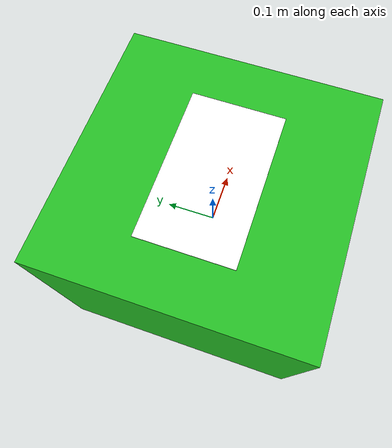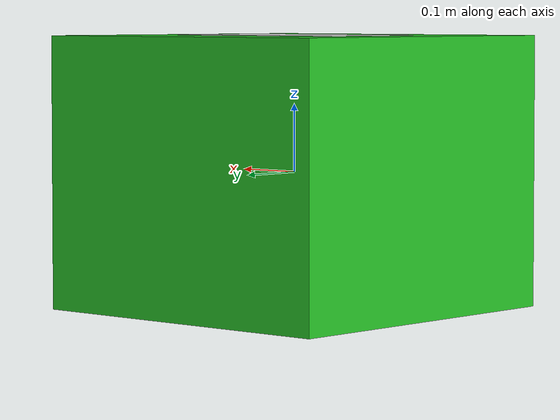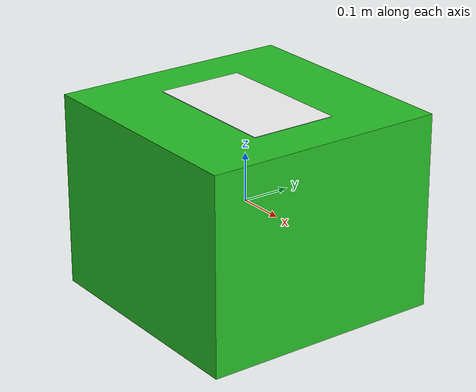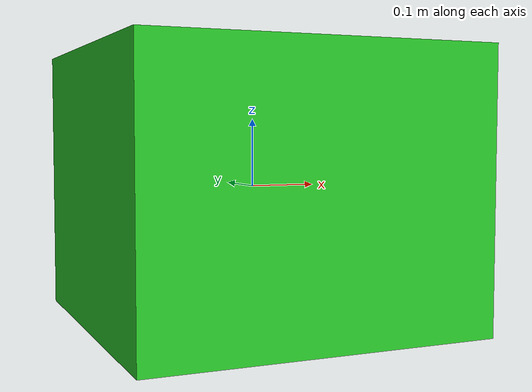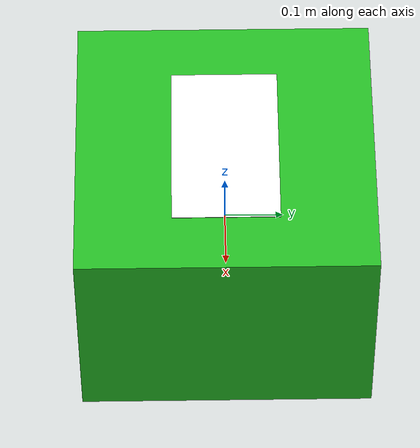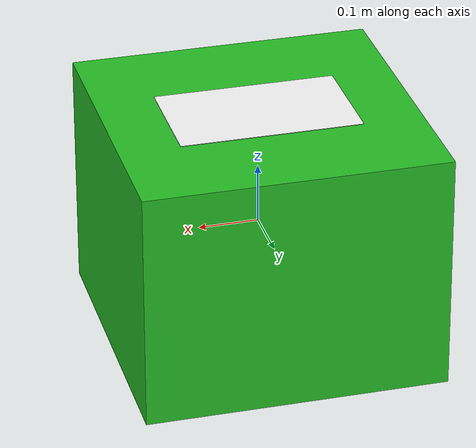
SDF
<?xml version="1.0" ?>
<sdf version="1.6">
  <model name="payload_box_50kg">
    <link name="link">

      <!-- 50 kg  0.5×0.5×0.4 m -->
      <inertial>
        <mass>50.0</mass>
        <inertia>
          <!-- ixx = m*(d²+h²)/12 = 50*(0.5²+0.4²)/12 -->
          <ixx>1.7083</ixx>
          <ixy>0</ixy><ixz>0</ixz>
          <iyy>1.7083</iyy>
          <iyz>0</iyz>
          <!-- izz = m*(w²+d²)/12 = 50*(0.5²+0.5²)/12 -->
          <izz>2.0833</izz>
        </inertia>
      </inertial>

      <!-- สีเขียว — บรรทุก 50 kg -->
      <visual name="box_body">
        <geometry><box><size>0.5 0.5 0.4</size></box></geometry>
        <material>
          <ambient>0.10 0.65 0.10 1</ambient>
          <diffuse>0.15 0.75 0.15 1</diffuse>
          <specular>0.05 0.15 0.05 1</specular>
        </material>
      </visual>

      <!-- แถบขาวบอกน้ำหนัก (top face) -->
      <visual name="label">
        <pose>0 0 0.2005 0 0 0</pose>
        <geometry><box><size>0.30 0.18 0.001</size></box></geometry>
        <material>
          <ambient>0.95 0.95 0.95 1</ambient>
          <diffuse>0.98 0.98 0.98 1</diffuse>
        </material>
      </visual>

      <collision name="collision">
        <geometry><box><size>0.5 0.5 0.4</size></box></geometry>
        <surface>
          <friction><ode><mu>0.8</mu><mu2>0.8</mu2></ode></friction>
        </surface>
      </collision>

    </link>
  </model>
</sdf>
